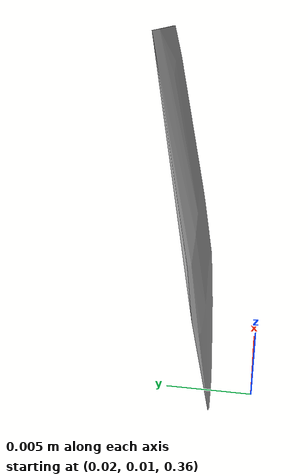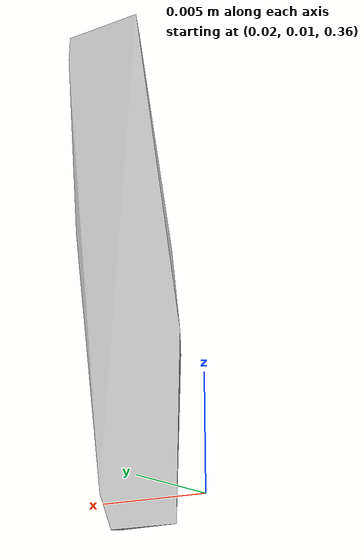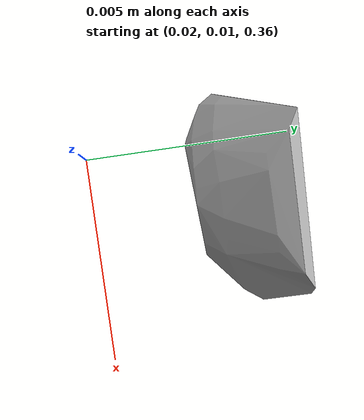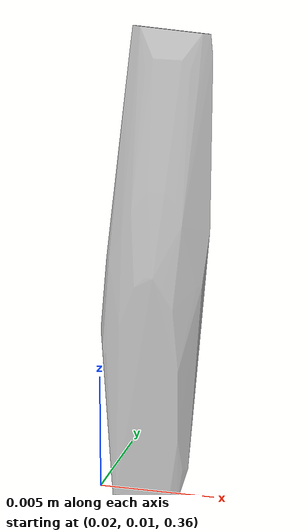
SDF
<?xml version="1.0"?>
<sdf version="1.7">
  <model name="vascular_partexport023">
    <link name="vascular_partexport023_body">
      <visual name="vascular_partexport023_visual">
        <geometry>
          <mesh>
            <uri>vascular_partexport023.obj</uri>
          </mesh>
        </geometry>
      </visual>
      <collision name="vascular_partexport023_collision">
        <geometry>
          <mesh>
            <uri>vascular_partexport023.obj</uri>
          </mesh>
        </geometry>
      </collision>
    </link>
    <frame name="vascular_partexport023_center">
      <pose relative_to="vascular_partexport023_body">0 0 0 0 0 0</pose>
    </frame>
  </model>
</sdf>
